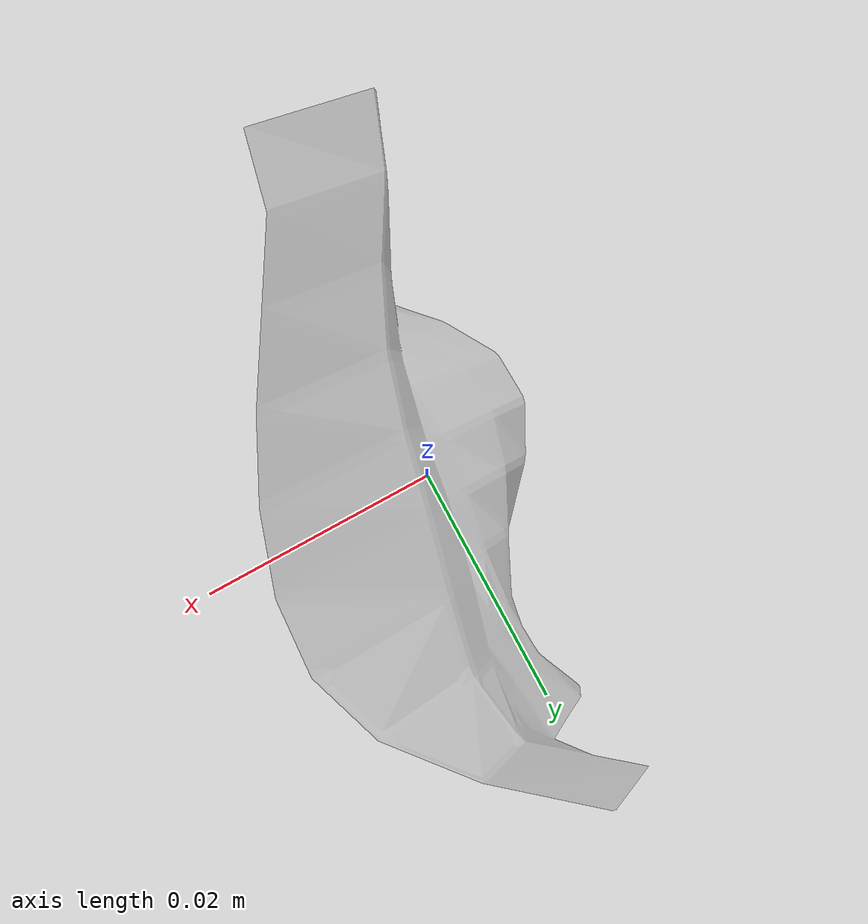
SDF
<?xml version='1.0'?>
<sdf version='1.6'>
  <model name="ID1_130">
  <static>true</static>
    <link name="link">
      <collision name="collision">
        <geometry>
          <mesh>
            <uri>model://test/meshes/ID1_130.dae</uri>
          </mesh>
        </geometry>
      </collision>

      <visual name='visual'>
        <geometry>
          <mesh>
            <uri>model://ID1_130/meshes/ID1_130.dae</uri>
          </mesh>
        </geometry>
      </visual>
    </link>

    </model>
  </sdf>
